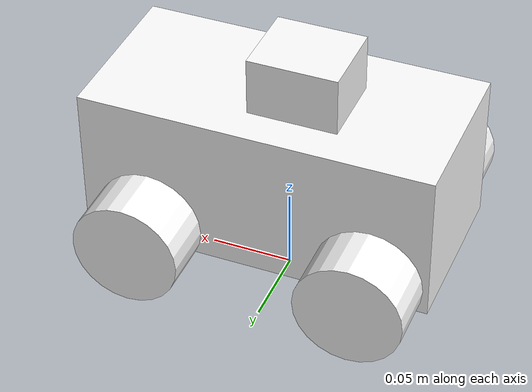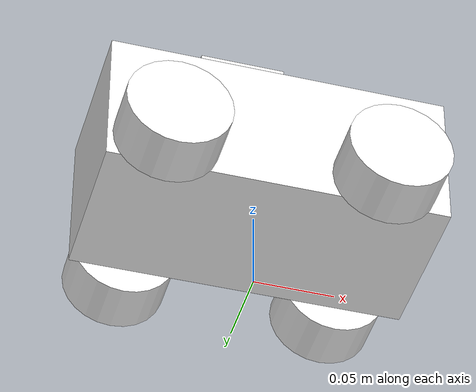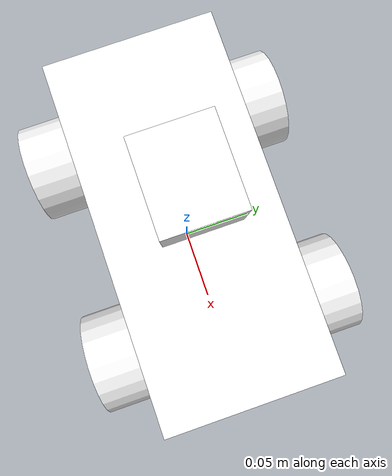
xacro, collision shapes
<?xml version="1.0" ?>
<robot name="mecanum" xmlns:xacro="http://ros.org/wiki/xacro">
  <!-- 定义黑色材质 -->
  <material name="black">
    <color rgba="0 0 0 1"/>
  </material>

  <link name="imu_link"/>

  <joint name="imu_joint" type="fixed">
    <parent link="base_link"/>
    <child link="imu_link"/>
    <origin xyz="0 0 0" rpy="0 0 -1.57"/>
  </joint>

  <link name="base_footprint"/>

  <joint name="base_footprint_to_base_link" type="fixed">
    <parent link="base_footprint"/>
    <child link="base_link"/>
    <origin xyz="0 0 0.07" rpy="0 0 0"/>
  </joint>
  <link name="base_link">
    <inertial>
      <origin rpy="0 0 0" xyz="7.82634169708696E-05 3.66518389137982E-05 0.0068167426737893"/>
      <mass value="0.080358044299185"/>
      <inertia ixx="9.92047502462735E-05" ixy="3.20099144678921E-08" ixz="1.15869166655817E-05" iyy="0.000292461515602123" iyz="-2.92890751882614E-08" izz="0.000367604260834833"/>
    </inertial>
    <visual>
      <origin rpy="0 0 0" xyz="0 0 0"/>
      <geometry>
        <mesh filename="package://mentorpi_description/meshes/mecanum/base_link.STL"/>
      </geometry>
      <material name="">
        <color rgba="1 1 1 1"/>
      </material>
    </visual>
    <collision>
      <origin rpy="0 0 0" xyz="0.0030 0 0.0113"/>
      <geometry>
        <box size="0.2119 0.1000 0.0924"/>
      </geometry>
    </collision>
  </link>

  <link name="wheel_lf_Link">
    <inertial>
      <origin rpy="0 0 0" xyz="6.23194347770945E-05 -0.00574614971695361 2.98597149463314E-05"/>
      <mass value="0.0378743634664218"/>
      <inertia ixx="3.67678518315829E-06" ixy="-1.42189561270372E-09" ixz="-1.20320324868622E-08" iyy="5.81008995754212E-06" iyz="1.72329758812212E-09" izz="3.67939460898329E-06"/>
    </inertial>
    <visual>
      <origin rpy="0 0 0" xyz="0 0 0"/>
      <geometry>
        <mesh filename="package://mentorpi_description/meshes/mecanum/wheel_lf_Link.STL"/>
      </geometry>
      <material name="">
        <color rgba="1 1 1 1"/>
      </material>
    </visual>
    <collision>
      <origin rpy="1.5708 0 0" xyz="0 -0.0074 0"/>
      <geometry>
        <cylinder radius="0.03235" length="0.0344"/>
      </geometry>
    </collision>
  </link>
  <joint name="wheel_lf_Joint" type="continuous">
    <origin rpy="0 0 0" xyz="0.067052 0.07591 -0.018408"/>
    <parent link="base_link"/>
    <child link="wheel_lf_Link"/>
    <axis xyz="0.00012228 1 -4.0642E-05"/>
  </joint>
  <link name="wheel_rf_Link">
    <inertial>
      <origin rpy="0 0 0" xyz="6.22118237483121E-05 0.00574626671891662 2.98167804906255E-05"/>
      <mass value="0.0378687944527435"/>
      <inertia ixx="3.67635322071944E-06" ixy="1.49075106320551E-09" ixz="-1.20440562033349E-08" iyy="5.80905053329656E-06" iyz="-1.7316728972649E-09" izz="3.67859542953002E-06"/>
    </inertial>
    <visual>
      <origin rpy="0 0 0" xyz="0 0 0"/>
      <geometry>
        <mesh filename="package://mentorpi_description/meshes/mecanum/wheel_rf_Link.STL"/>
      </geometry>
      <material name="">
        <color rgba="1 1 1 1"/>
      </material>
    </visual>
    <collision>
      <origin rpy="1.5708 0 0" xyz="0 0.0074 0"/>
      <geometry>
        <cylinder radius="0.03235" length="0.0344"/>
      </geometry>
    </collision>
  </link>
  <joint name="wheel_rf_Joint" type="continuous">
    <origin rpy="0 0 0" xyz="0.067052 -0.07591 -0.018408"/>
    <parent link="base_link"/>
    <child link="wheel_rf_Link"/>
    <axis xyz="0.00012228 1 -4.0642E-05"/>
  </joint>
  <link name="wheel_lb_Link">
    <inertial>
      <origin rpy="0 0 0" xyz="-4.39089176767909E-05 -0.00574629427498616 3.59684108433914E-05"/>
      <mass value="0.0378689402752074"/>
      <inertia ixx="3.67629328541386E-06" ixy="1.48552620491244E-09" ixz="1.20977149812926E-08" iyy="5.80903210056483E-06" iyz="1.72555302795062E-09" izz="3.6786318488588E-06"/>
    </inertial>
    <visual>
      <origin rpy="0 0 0" xyz="0 0 0"/>
      <geometry>
        <mesh filename="package://mentorpi_description/meshes/mecanum/wheel_lb_Link.STL"/>
      </geometry>
      <material name="">
        <color rgba="1 1 1 1"/>
      </material>
    </visual>
    <collision>
      <origin rpy="1.5708 0 0" xyz="0 -0.0074 0"/>
      <geometry>
        <cylinder radius="0.03235" length="0.0344"/>
      </geometry>
    </collision>
  </link>
  <joint name="wheel_lb_Joint" type="continuous">
    <origin rpy="0 0 0" xyz="-0.06764 0.07591 -0.018414"/>
    <parent link="base_link"/>
    <child link="wheel_lb_Link"/>
    <axis xyz="0 1 0"/>
  </joint>
  <link name="wheel_rb_Link">
    <inertial>
      <origin rpy="0 0 0" xyz="-6.2256559793028E-05 0.00574614092169209 2.96857054536206E-05"/>
      <mass value="0.0378742388937267"/>
      <inertia ixx="3.67690880733038E-06" ixy="-1.42614754024296E-09" ixz="1.19925568848388E-08" iyy="5.81009054149328E-06" iyz="-1.72488948912739E-09" izz="3.67928241656151E-06"/>
    </inertial>
    <visual>
      <origin rpy="0 0 0" xyz="0 0 0"/>
      <geometry>
        <mesh filename="package://mentorpi_description/meshes/mecanum/wheel_rb_Link.STL"/>
      </geometry>
      <material name="">
        <color rgba="1 1 1 1"/>
      </material>
    </visual>
    <collision>
      <origin rpy="1.5708 0 0" xyz="0 0.0074 0"/>
      <geometry>
        <cylinder radius="0.03235" length="0.0344"/>
      </geometry>
    </collision>
  </link>
  <joint name="wheel_rb_Joint" type="continuous">
    <origin rpy="0 0 0" xyz="-0.067621 -0.07591 -0.018408"/>
    <parent link="base_link"/>
    <child link="wheel_rb_Link"/>
    <axis xyz="0 1 0"/>
  </joint>
  <link name="depth_cam">
    <inertial>
      <origin rpy="0 0 0" xyz="0.0023402290706885 0.00113784597175737 -0.010212706399263"/>
      <mass value="0.0270474748712619"/>
      <inertia ixx="1.43718505980935E-05" ixy="1.24779390700312E-07" ixz="1.29836475580818E-08" iyy="1.65912768335363E-06" iyz="2.28291474116005E-08" izz="1.45615925671284E-05"/>
    </inertial>
    <visual>
      <origin rpy="0 0 0" xyz="0 0 0"/>
      <geometry>
        <mesh filename="package://mentorpi_description/meshes/mecanum/cam_Link.STL"/>
      </geometry>
      <material name="">
        <color rgba="1 1 1 1"/>
      </material>
    </visual>
    <collision>
      <origin rpy="0 0 0" xyz="-0.0065 0.0007 -0.0127"/>
      <geometry>
        <box size="0.0405 0.0898 0.0262"/>
      </geometry>
    </collision>
  </link>
  <joint name="cam_Joint" type="fixed">
    <origin rpy="0 0 0" xyz="0.061376 -0.00013463 0.051154"/>
    <parent link="base_link"/>
    <child link="depth_cam"/>
    <axis xyz="0 0 0"/>
  </joint>
  <link name="lidar_frame">
    <inertial>
      <origin rpy="0 0 0" xyz="8.65086404290248E-05 9.02624664517182E-05 -0.0183546134707293"/>
      <mass value="0.0405423044439003"/>
      <inertia ixx="4.98470777040832E-06" ixy="-1.5407626531037E-07" ixz="2.05182756187779E-09" iyy="5.03926730954594E-06" iyz="1.10062857837226E-08" izz="8.25645669795306E-06"/>
    </inertial>
    <visual>
      <origin rpy="0 0 0" xyz="0 0 0"/>
      <geometry>
        <mesh filename="package://mentorpi_description/meshes/mecanum/lidar_Link.STL"/>
      </geometry>
      <material name="">
        <color rgba="1 1 1 1"/>
      </material>
    </visual>
    <collision>
      <origin rpy="0 0 0" xyz="0.0001 0.0045 -0.0175"/>
      <geometry>
        <box size="0.0537 0.0465 0.0350"/>
      </geometry>
    </collision>
  </link>
  <joint name="lidar_Joint" type="fixed">
    <origin rpy="0 0 0" xyz="-0.012242 -8.533E-05 0.092501"/>
    <parent link="base_link"/>
    <child link="lidar_frame"/>
    <axis xyz="0 0 0"/>
  </joint>

</robot>
